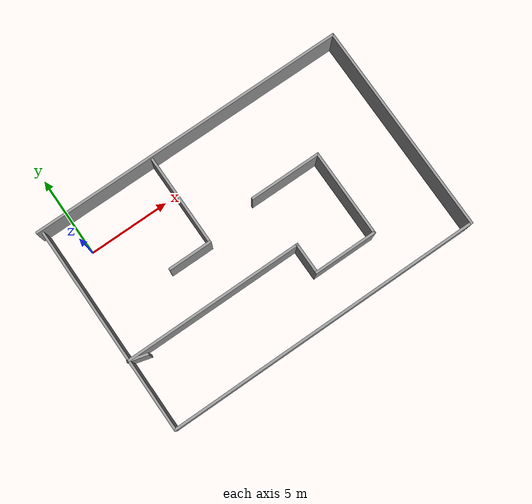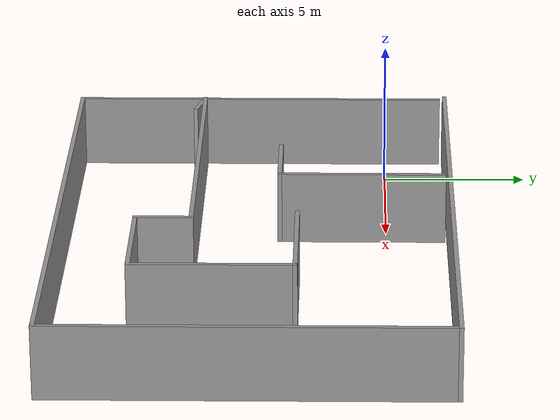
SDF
<?xml version='1.0'?>
<sdf version='1.7'>
  <model name='wall'>
    <pose>8.12533 -4.3849 0 0 -0 0</pose>
    <link name='Wall_10'>
      <collision name='Wall_10_Collision'>
        <geometry>
          <box>
            <size>20 0.15 2.5</size>
          </box>
        </geometry>
        <pose>0 0 1.25 0 -0 0</pose>
      </collision>
      <visual name='Wall_10_Visual'>
        <pose>0 0 1.25 0 -0 0</pose>
        <geometry>
          <box>
            <size>20 0.15 2.5</size>
          </box>
        </geometry>
        <material>
          <script>
            <uri>file://media/materials/scripts/gazebo.material</uri>
            <name>Gazebo/Grey</name>
          </script>
          <ambient>1 1 1 1</ambient>
        </material>
        <meta>
          <layer>0</layer>
        </meta>
      </visual>
      <pose>-0 6.55 0 0 -0 3.14159</pose>
    </link>
    <link name='Wall_12'>
      <collision name='Wall_12_Collision'>
        <geometry>
          <box>
            <size>5.75 0.15 2.5</size>
          </box>
        </geometry>
        <pose>0 0 1.25 0 -0 0</pose>
      </collision>
      <visual name='Wall_12_Visual'>
        <pose>0 0 1.25 0 -0 0</pose>
        <geometry>
          <box>
            <size>5.75 0.15 2.5</size>
          </box>
        </geometry>
        <material>
          <script>
            <uri>file://media/materials/scripts/gazebo.material</uri>
            <name>Gazebo/Grey</name>
          </script>
          <ambient>1 1 1 1</ambient>
        </material>
        <meta>
          <layer>0</layer>
        </meta>
      </visual>
      <pose>-2.46256 3.53969 0 0 -0 -1.5708</pose>
    </link>
    <link name='Wall_13'>
      <collision name='Wall_13_Collision'>
        <geometry>
          <box>
            <size>2.75 0.15 2.5</size>
          </box>
        </geometry>
        <pose>0 0 1.25 0 -0 0</pose>
      </collision>
      <visual name='Wall_13_Visual'>
        <pose>0 0 1.25 0 -0 0</pose>
        <geometry>
          <box>
            <size>2.75 0.15 2.5</size>
          </box>
        </geometry>
        <material>
          <script>
            <uri>file://media/materials/scripts/gazebo.material</uri>
            <name>Gazebo/Grey</name>
          </script>
          <ambient>1 1 1 1</ambient>
        </material>
        <meta>
          <layer>0</layer>
        </meta>
      </visual>
      <pose>-3.76256 0.73969 0 0 -0 3.14159</pose>
    </link>
    <link name='Wall_15'>
      <collision name='Wall_15_Collision'>
        <geometry>
          <box>
            <size>1.25 0.15 2.5</size>
          </box>
        </geometry>
        <pose>0 0 1.25 0 -0 0</pose>
      </collision>
      <visual name='Wall_15_Visual'>
        <pose>0 0 1.25 0 -0 0</pose>
        <geometry>
          <box>
            <size>1.25 0.15 2.5</size>
          </box>
        </geometry>
        <material>
          <script>
            <uri>file://media/materials/scripts/gazebo.material</uri>
            <name>Gazebo/Grey</name>
          </script>
          <ambient>1 1 1 1</ambient>
        </material>
        <meta>
          <layer>0</layer>
        </meta>
      </visual>
      <pose>-9.19344 -2.24637 0 0 -0 2.87979</pose>
    </link>
    <link name='Wall_16'>
      <collision name='Wall_16_Collision'>
        <geometry>
          <box>
            <size>11.25 0.15 2.5</size>
          </box>
        </geometry>
        <pose>0 0 1.25 0 -0 0</pose>
      </collision>
      <visual name='Wall_16_Visual'>
        <pose>0 0 1.25 0 -0 0</pose>
        <geometry>
          <box>
            <size>11.25 0.15 2.5</size>
          </box>
        </geometry>
        <material>
          <script>
            <uri>file://media/materials/scripts/gazebo.material</uri>
            <name>Gazebo/Grey</name>
          </script>
          <ambient>1 1 1 1</ambient>
        </material>
        <meta>
          <layer>0</layer>
        </meta>
      </visual>
      <pose>-4.1747 -2.10402 0 0 -0 0</pose>
    </link>
    <link name='Wall_17'>
      <collision name='Wall_17_Collision'>
        <geometry>
          <box>
            <size>2 0.15 2.5</size>
          </box>
        </geometry>
        <pose>0 0 1.25 0 -0 0</pose>
      </collision>
      <visual name='Wall_17_Visual'>
        <pose>0 0 1.25 0 -0 0</pose>
        <geometry>
          <box>
            <size>2 0.15 2.5</size>
          </box>
        </geometry>
        <material>
          <script>
            <uri>file://media/materials/scripts/gazebo.material</uri>
            <name>Gazebo/Grey</name>
          </script>
          <ambient>1 1 1 1</ambient>
        </material>
        <meta>
          <layer>0</layer>
        </meta>
      </visual>
      <pose>1.3753 -3.02902 0 0 -0 -1.5708</pose>
    </link>
    <link name='Wall_18'>
      <collision name='Wall_18_Collision'>
        <geometry>
          <box>
            <size>4 0.15 2.5</size>
          </box>
        </geometry>
        <pose>0 0 1.25 0 -0 0</pose>
      </collision>
      <visual name='Wall_18_Visual'>
        <pose>0 0 1.25 0 -0 0</pose>
        <geometry>
          <box>
            <size>4 0.15 2.5</size>
          </box>
        </geometry>
        <material>
          <script>
            <uri>file://media/materials/scripts/gazebo.material</uri>
            <name>Gazebo/Grey</name>
          </script>
          <ambient>1 1 1 1</ambient>
        </material>
        <meta>
          <layer>0</layer>
        </meta>
      </visual>
      <pose>3.3003 -3.95402 0 0 -0 0</pose>
    </link>
    <link name='Wall_19'>
      <collision name='Wall_19_Collision'>
        <geometry>
          <box>
            <size>5.5 0.15 2.5</size>
          </box>
        </geometry>
        <pose>0 0 1.25 0 -0 0</pose>
      </collision>
      <visual name='Wall_19_Visual'>
        <pose>0 0 1.25 0 -0 0</pose>
        <geometry>
          <box>
            <size>5.5 0.15 2.5</size>
          </box>
        </geometry>
        <material>
          <script>
            <uri>file://media/materials/scripts/gazebo.material</uri>
            <name>Gazebo/Grey</name>
          </script>
          <ambient>1 1 1 1</ambient>
        </material>
        <meta>
          <layer>0</layer>
        </meta>
      </visual>
      <pose>5.2253 -1.27902 0 0 -0 1.5708</pose>
    </link>
    <link name='Wall_20'>
      <collision name='Wall_20_Collision'>
        <geometry>
          <box>
            <size>4.5 0.15 2.5</size>
          </box>
        </geometry>
        <pose>0 0 1.25 0 -0 0</pose>
      </collision>
      <visual name='Wall_20_Visual'>
        <pose>0 0 1.25 0 -0 0</pose>
        <geometry>
          <box>
            <size>4.5 0.15 2.5</size>
          </box>
        </geometry>
        <material>
          <script>
            <uri>file://media/materials/scripts/gazebo.material</uri>
            <name>Gazebo/Grey</name>
          </script>
          <ambient>1 1 1 1</ambient>
        </material>
        <meta>
          <layer>0</layer>
        </meta>
      </visual>
      <pose>3.0503 1.39598 0 0 -0 3.14159</pose>
    </link>
    <link name='Wall_7'>
      <collision name='Wall_7_Collision'>
        <geometry>
          <box>
            <size>13 0.15 2.5</size>
          </box>
        </geometry>
        <pose>0 0 1.25 0 -0 0</pose>
      </collision>
      <visual name='Wall_7_Visual'>
        <pose>0 0 1.25 0 -0 0</pose>
        <geometry>
          <box>
            <size>13 0.15 2.5</size>
          </box>
        </geometry>
        <material>
          <script>
            <uri>file://media/materials/scripts/gazebo.material</uri>
            <name>Gazebo/Grey</name>
          </script>
          <ambient>1 1 1 1</ambient>
        </material>
        <meta>
          <layer>0</layer>
        </meta>
      </visual>
      <pose>-9.675 -0.125 0 0 -0 -1.5708</pose>
    </link>
    <link name='Wall_8'>
      <collision name='Wall_8_Collision'>
        <geometry>
          <box>
            <size>19.75 0.15 2.5</size>
          </box>
        </geometry>
        <pose>0 0 1.25 0 -0 0</pose>
      </collision>
      <visual name='Wall_8_Visual'>
        <pose>0 0 1.25 0 -0 0</pose>
        <geometry>
          <box>
            <size>19.75 0.15 2.5</size>
          </box>
        </geometry>
        <material>
          <script>
            <uri>file://media/materials/scripts/gazebo.material</uri>
            <name>Gazebo/Grey</name>
          </script>
          <ambient>1 1 1 1</ambient>
        </material>
        <meta>
          <layer>0</layer>
        </meta>
      </visual>
      <pose>0.125 -6.55 0 0 -0 0</pose>
    </link>
    <link name='Wall_9'>
      <collision name='Wall_9_Collision'>
        <geometry>
          <box>
            <size>13.25 0.15 2.5</size>
          </box>
        </geometry>
        <pose>0 0 1.25 0 -0 0</pose>
      </collision>
      <visual name='Wall_9_Visual'>
        <pose>0 0 1.25 0 -0 0</pose>
        <geometry>
          <box>
            <size>13.25 0.15 2.5</size>
          </box>
        </geometry>
        <material>
          <script>
            <uri>file://media/materials/scripts/gazebo.material</uri>
            <name>Gazebo/Grey</name>
          </script>
          <ambient>1 1 1 1</ambient>
        </material>
        <meta>
          <layer>0</layer>
        </meta>
      </visual>
      <pose>9.925 -0 0 0 -0 1.5708</pose>
    </link>
    <static>1</static>
  </model>
</sdf>
